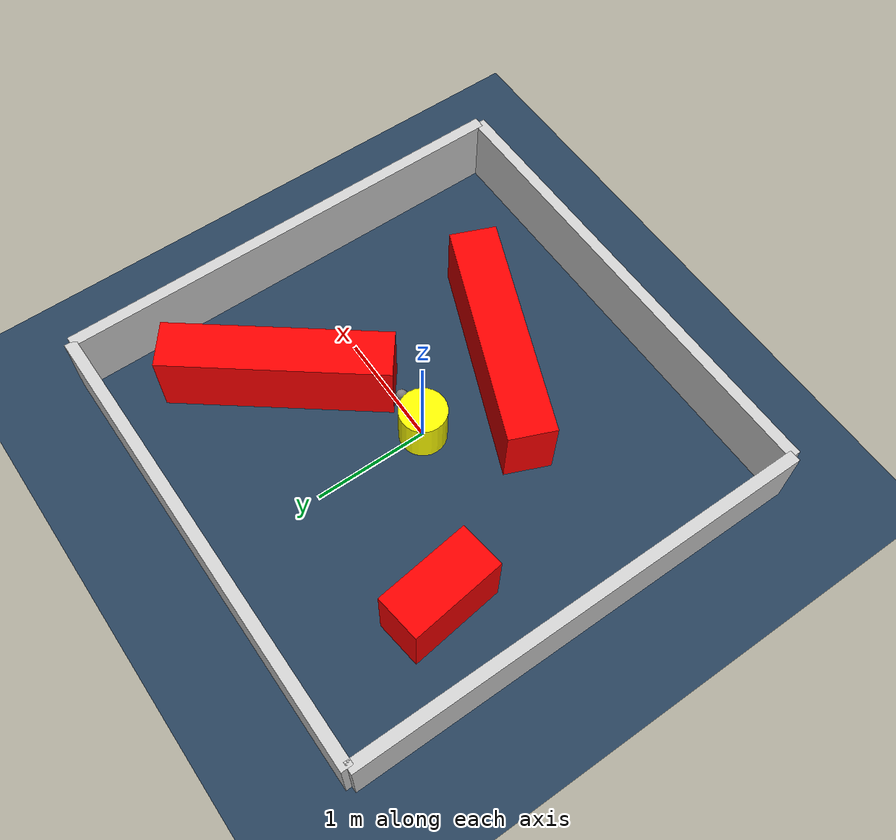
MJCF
<?xml version="1.0" ?>
<mujoco model="generated_environment">
  <option timestep="0.01" integrator="RK4" cone="elliptic"/>
  <default>
    <geom density="1"/>
  </default>
  <asset>
    <texture builtin="gradient" height="3072" rgb1="0.3 0.5 0.7" rgb2="0 0 0" type="skybox" width="512"/>
    <texture builtin="checker" height="300" mark="edge" markrgb="0.8 0.8 0.8" name="groundplane" rgb1="0.2 0.3 0.4" rgb2="0.1 0.2 0.3" type="2d" width="300"/>
    <material name="groundplane" reflectance="0.2" texrepeat="5 5" texture="groundplane" texuniform="true"/>
    <material name="robot" rgba="0.0 1.0 0.0 1"/>
  </asset>
  <worldbody>
    <light dir="0 0 -1" directional="true" pos="0 0 1.5"/>
    <geom condim="4" friction="1.0 0.005 0.001" material="groundplane" name="floor" size="0 0 0.05" type="plane"/>
    <body name="walls">
      <geom name="wall_1" condim="4" pos="-2.0 0.0 0.3" rgba="0.800000011920929 0.800000011920929 0.800000011920929 1.0" size="0.05 2.0 0.3" type="box"/>
      <geom name="wall_2" condim="4" pos="2.0 0.0 0.3" rgba="0.800000011920929 0.800000011920929 0.800000011920929 1.0" size="0.05 2.0 0.3" type="box"/>
      <geom name="wall_3" condim="4" pos="0.0 -2.0 0.3" rgba="0.800000011920929 0.800000011920929 0.800000011920929 1.0" size="2.0 0.05 0.3" type="box"/>
      <geom name="wall_4" condim="4" pos="0.0 2.0 0.3" rgba="0.800000011920929 0.800000011920929 0.800000011920929 1.0" size="2.0 0.05 0.3" type="box"/>
    </body>
    <body name="robot">
      <joint name="joint_x" type="slide" pos="0 0 0" axis="1 0 0"/>
      <joint name="joint_y" type="slide" pos="0 0 0" axis="0 1 0"/>
      <geom name="robot" type="sphere" pos="0.3 0.0 0.2" size="0.05" mass="5." friction="1.0 0.005 0.0001" condim="4" rgba="0.5 0.5 0.5 1.0"/>
      <site name="sensor_ball"/>
    </body>
    <body name="obstacle_movable_1">
      <geom name="obstacle_movable_1" condim="4" pos="0.0 0.0 0.2" euler="0 0 0.0" friction="1.0 0.005 0.001" rgba="1.0 1.0 0.0 1.0" size="0.2 0.2 0.0" type="cylinder" mass="0.1"/>
      <joint type="free"/>
    </body>
    <body name="obstacle_2_static">
      <geom name="obstacle_2_static" condim="4" pos="1.028608939395275 0.7025758419269257 0.3" euler="0 0 52.3149842257152" friction="1.0 0.005 0.001" rgba="1 0 0 1" size="0.9389148532983409 0.2 0.3" type="box"/>
    </body>
    <body name="obstacle_3_static">
      <geom name="obstacle_3_static" condim="4" pos="0.16276119853074844 -0.8738579659265153 0.3" euler="0 0 157.44596501927828" friction="1.0 0.005 0.001" rgba="1 0 0 1" size="0.9832968327808904 0.2 0.3" type="box"/>
    </body>
    <body name="obstacle_4_static">
      <geom name="obstacle_4_static" condim="4" pos="-1.2899345672593314 0.7497472239303005 0.3" euler="0 0 97.28382058651421" friction="1.0 0.005 0.001" rgba="1 0 0 1" size="0.4144584676451902 0.2 0.3" type="box"/>
    </body>
  </worldbody>
  <actuator>
    <motor name="actuator_x" joint="joint_x" gear="1" ctrlrange="-1 1"/>
    <motor name="actuator_y" joint="joint_y" gear="1" ctrlrange="-1 1"/>
  </actuator>
</mujoco>
